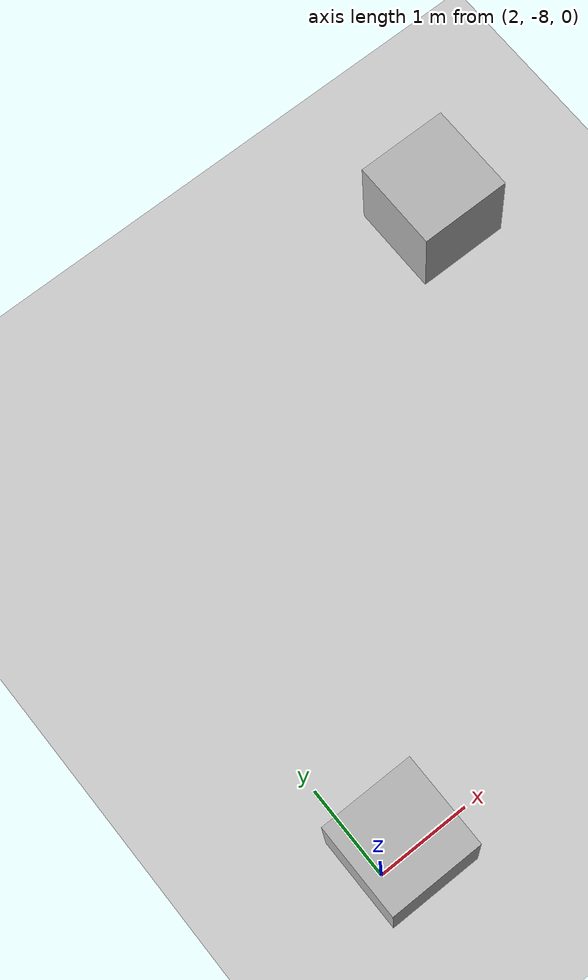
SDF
<sdf version="1.10">
 <world name="ackermann_steering">
  <model name="ground_plane">
   <static>true</static>
   <link name="link">
    <collision name="collision">
     <geometry><plane><normal>0 0 1</normal><size>100 100</size></plane></geometry>
     <surface>
      <friction>
       <ode><mu>50</mu></ode>
       <bullet><friction>1</friction><rolling_friction>0.10000000000000001</rolling_friction></bullet>
      </friction>
     </surface>
    </collision>
    <visual name="visual">
     <geometry><plane><normal>0 0 1</normal><size>100 100</size></plane></geometry>
     <material>
      <ambient>0.800000012 0.800000012 0.800000012 1</ambient>
      <diffuse>0.800000012 0.800000012 0.800000012 1</diffuse>
      <specular>0.800000012 0.800000012 0.800000012 1</specular>
     </material>
    </visual>
    <inertial>
     <mass>1</mass>
     <inertia><ixx>1</ixx><ixy>0</ixy><ixz>0</ixz><iyy>1</iyy><iyz>0</iyz><izz>1</izz></inertia>
    </inertial>
   </link>
  </model>
  <model name="box_1">
   <pose>6.5780716225637441 -3.1529983044860832 0.5 0 0 0</pose>
   <link name="box_link">
    <inertial>
     <inertia><ixx>0.16666</ixx><ixy>0</ixy><ixz>0</ixz><iyy>0.16666</iyy><iyz>0</iyz><izz>0.16666</izz></inertia>
     <mass>1</mass>
    </inertial>
    <collision name="box_collision"><geometry><box><size>1 1 1</size></box></geometry></collision>
    <visual name="box_visual">
     <geometry><box><size>1 1 1</size></box></geometry>
     <material>
      <ambient>0.300000012 0.300000012 0.300000012 1</ambient>
      <diffuse>0.699999988 0.699999988 0.699999988 1</diffuse>
      <specular>1 1 1 1</specular>
     </material>
    </visual>
   </link>
   <static>false</static>
  </model>
  <model name="box_2">
   <pose>2.2840925200090147 -7.9435202451856171 0.5 0 0 0</pose>
   <link name="box_link">
    <inertial>
     <inertia><ixx>0.16666</ixx><ixy>0</ixy><ixz>0</ixz><iyy>0.16666</iyy><iyz>0</iyz><izz>0.16666</izz></inertia>
     <mass>1</mass>
    </inertial>
    <collision name="box_collision"><geometry><box><size>1 1 1</size></box></geometry></collision>
    <visual name="box_visual">
     <geometry><box><size>1 1 1</size></box></geometry>
     <material>
      <ambient>0.300000012 0.300000012 0.300000012 1</ambient>
      <diffuse>0.699999988 0.699999988 0.699999988 1</diffuse>
      <specular>1 1 1 1</specular>
     </material>
    </visual>
   </link>
   <static>false</static>
  </model>
 </world>
</sdf>
